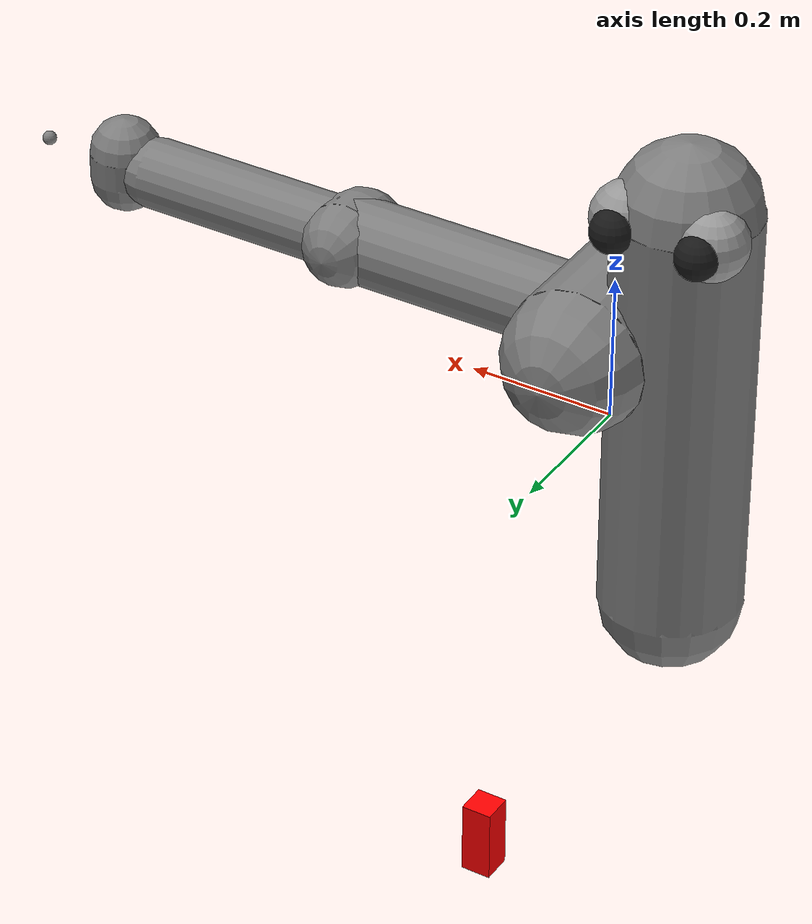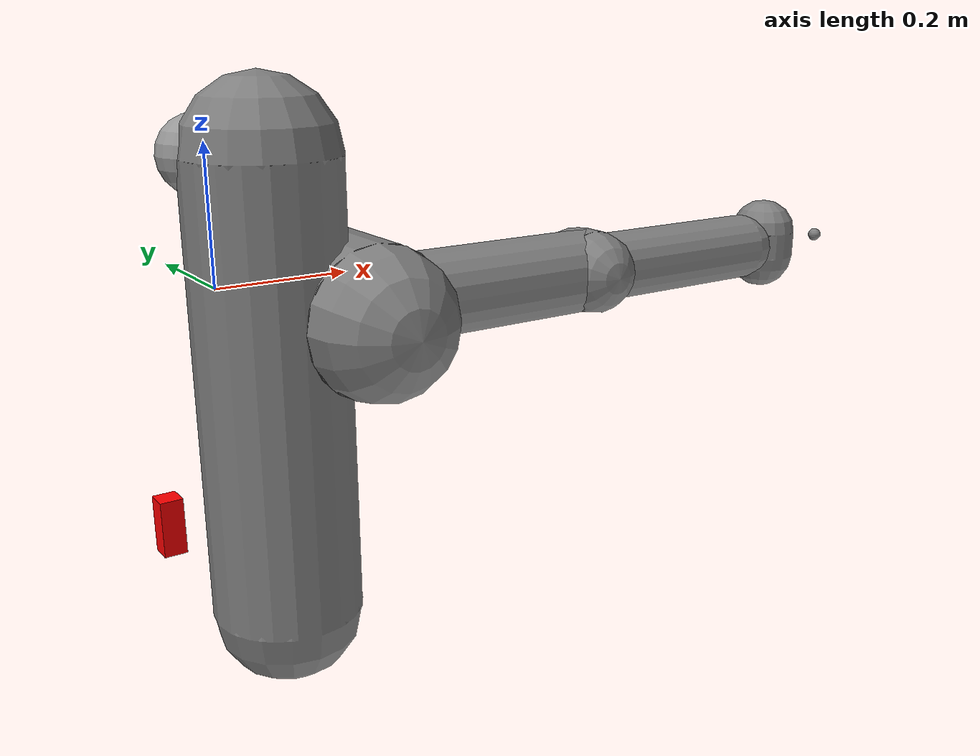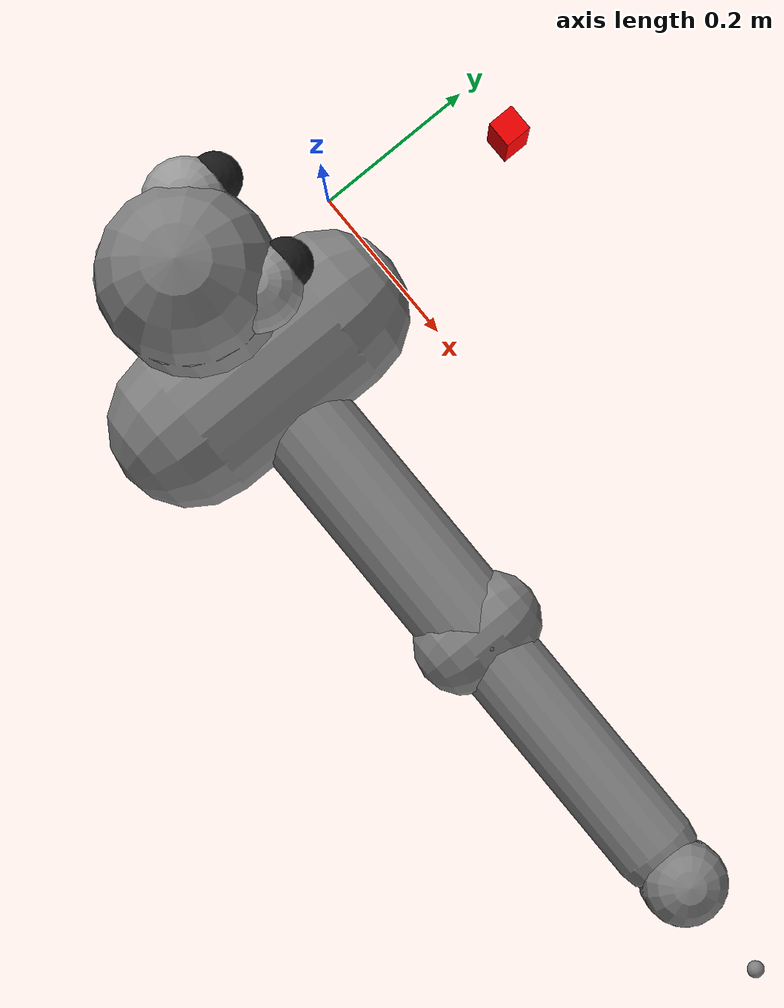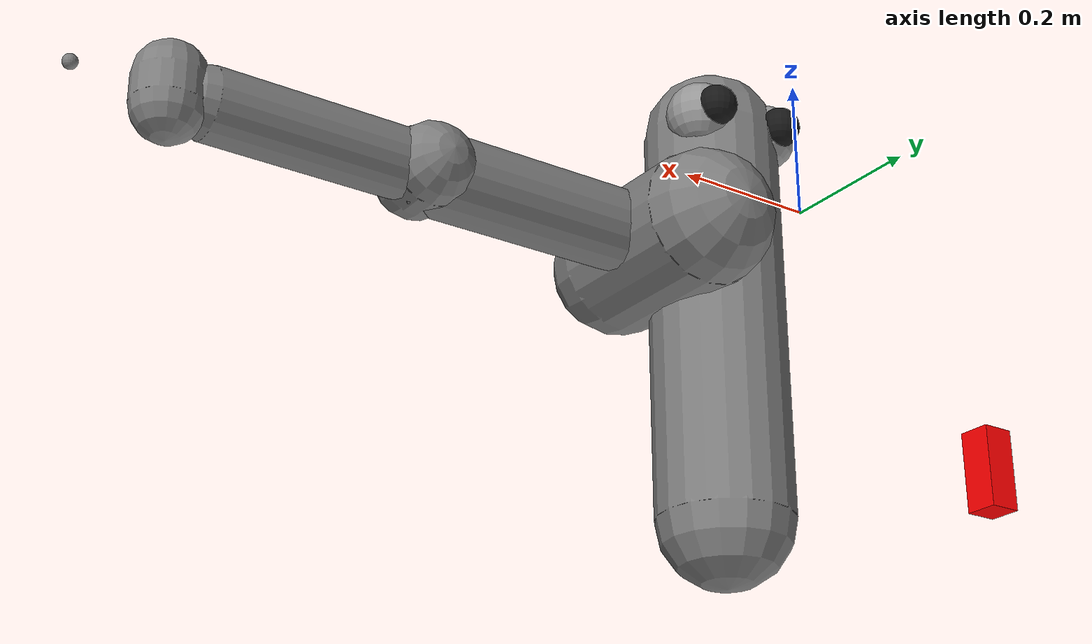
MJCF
<mujoco model="arm3d">

    <compiler inertiafromgeom="true" angle="radian" coordinate="local" />
    <option timestep="0.01" gravity="0 0 0" iterations="20" integrator="RK4" />
    <default>
        <joint armature="0.04" damping="1" limited="true" />
        <geom friction=".5 .1 .1" margin="0.002" condim="1" contype="0" conaffinity="0" />
    </default>

    <worldbody>
        <body name="r_shoulder_pan_link" pos="0 -0.188 0">
            <geom name="e1" type="sphere" rgba="0.6 0.6 0.6 1" pos="-0.06 0.05 0.2" size="0.05" />
            <geom name="e2" type="sphere" rgba="0.6 0.6 0.6 1" pos=" 0.06 0.05 0.2" size="0.05" />
            <geom name="e1p" type="sphere" rgba="0.1 0.1 0.1 1" pos="-0.06 0.09 0.2" size="0.03" />
            <geom name="e2p" type="sphere" rgba="0.1 0.1 0.1 1" pos=" 0.06 0.09 0.2" size="0.03" />
            <geom name="sp" type="capsule" fromto="0 0 -0.4 0 0 0.2" size="0.1" />
            <joint name="r_shoulder_pan_joint" type="hinge" pos="0 0 0" axis="0 0 1" range="-2.2854 1.714602" damping="10.0" />

            <body name="r_shoulder_lift_link" pos="0.1 0 0">
                <geom name="sl" type="capsule" fromto="0 -0.1 0 0 0.1 0" size="0.1" />
                <joint name="r_shoulder_lift_joint" type="hinge" pos="0 0 0" axis="0 1 0" range="-0.5236 1.3963" damping="10.0" />

                <body name="r_upper_arm_roll_link" pos="0 0 0">
                    <geom name="uar" type="capsule" fromto="-0.1 0 0 0.1 0 0" size="0.02" />
                    <joint name="r_upper_arm_roll_joint" type="hinge" pos="0 0 0" axis="1 0 0" range="-3.9 0.8" damping="0.1" />

                    <body name="r_upper_arm_link" pos="0 0 0">
                        <geom name="ua" type="capsule" fromto="0 0 0 0.4 0 0" size="0.06" />

                        <body name="r_elbow_flex_link" pos="0.4 0 0">
                            <geom name="ef" type="capsule" fromto="0 -0.02 0 0.0 0.02 0" size="0.06" />
                            <joint name="r_elbow_flex_joint" type="hinge" pos="0 0 0" axis="0 1 0" range="-2.3213 0" damping="1.0" />

                            <body name="r_forearm_roll_link" pos="0 0 0">
                                <geom name="fr" type="capsule" fromto="-0.1 0 0 0.1 0 0" size="0.02" />
                                <joint name="r_forearm_roll_joint" type="hinge" limited="false" pos="0 0 0" axis="1 0 0" damping=".1" />

                                <body name="r_forearm_link" pos="0 0 0">
                                    <geom name="fa" type="capsule" fromto="0 0 0 0.321 0 0" size="0.05" />

                                    <body name="r_wrist_flex_link" pos="0.321 0 0">
                                        <geom name="wf" type="capsule" fromto="0 -0.02 0 0 0.02 0" size="0.01" />
                                        <joint name="r_wrist_flex_joint" type="hinge" pos="0 0 0" axis="0 1 0" range="-2.094 0" damping=".1" />

                                        <body name="r_wrist_roll_link" pos="0 0 0">
                                            <geom name="wr" type="capsule" fromto="-0.02 0 0 0.02 0 0" size="0.01" />
                                            <joint name="r_wrist_roll_joint" type="hinge" pos="0 0 0" limited="false" axis="1 0 0" damping="0.1" />

                                            <body name="r_gripper_palm_link" pos="0 0 0">
                                                <geom name="pl" type="capsule" fromto="0.05 0 -0.02 0.05 0 0.02" size="0.05" />

                                                <body name="r_gripper_tool_frame" pos="0.18 0 0">
                                                    <site name="leg_top" pos="0 0 0" size="0.01" />

                                                    />
                                                </body>
                                            </body>
                                        </body>
                                    </body>
                                </body>
                            </body>
                        </body>
                    </body>
                </body>
            </body>
        </body>

	<body name="goal" pos="0.0 0.3 -0.47" >
	  <geom name="goal" rgba="1 0 0 1" type= "box" size="0.02 0.02 0.05" contype="1" conaffinity="1"/>
          <site name="goal" pos="0 0 0" size="0.01" />
	</body>

    </worldbody>

    <actuator>
        <motor joint="r_shoulder_pan_joint" ctrlrange="-100.0 100.0" ctrllimited="true" />
        <motor joint="r_shoulder_lift_joint" ctrlrange="-100.0 100.0" ctrllimited="true" />
        <motor joint="r_upper_arm_roll_joint" ctrlrange="-100.0 100.0" ctrllimited="true" />
        <motor joint="r_elbow_flex_joint" ctrlrange="-100.0 100.0" ctrllimited="true" />
        <motor joint="r_forearm_roll_joint" ctrlrange="-100.0 100.0" ctrllimited="true" />
        <motor joint="r_wrist_flex_joint" ctrlrange="-100.0 100.0" ctrllimited="true" />
        <motor joint="r_wrist_roll_joint" ctrlrange="-100.0 100.0" ctrllimited="true" />
    </actuator>

</mujoco>
